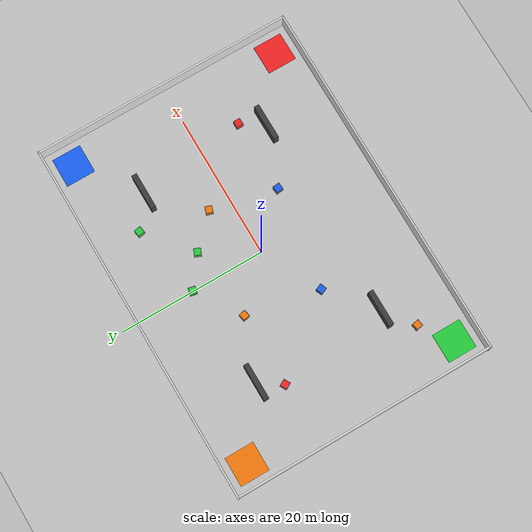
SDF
<?xml version="1.0" ?>
<sdf version="1.6">
  <!-- Large warehouse + colored pick boxes + corner drop pads. -->
  <world name="storage_warehouse">

    <include>
      <uri>model://ground_plane</uri>
    </include>
    <include>
      <uri>model://sun</uri>
    </include>

    <gravity>0 0 -9.8</gravity>
    <physics type="ode">
      <max_step_size>0.001</max_step_size>
      <real_time_factor>1</real_time_factor>
      <real_time_update_rate>1000</real_time_update_rate>
      <ode>
        <solver>
          <type>quick</type>
          <iters>50</iters>
          <sor>1.3</sor>
        </solver>
        <constraints>
          <cfm>0.0</cfm>
          <erp>0.2</erp>
          <contact_max_correcting_vel>1.0</contact_max_correcting_vel>
          <contact_surface_layer>0.001</contact_surface_layer>
        </constraints>
      </ode>
    </physics>

    <!-- Publishes /gazebo/model_states so detectors use real world poses (not odom drift) -->
    <plugin name="gazebo_ros_state" filename="libgazebo_ros_state.so">
      <ros>
        <namespace>/gazebo</namespace>
      </ros>
      <update_rate>20</update_rate>
    </plugin>

    <!-- Outer walls: 50 x 36 m — room for a ~3 m forklift to turn -->
    <model name="wall_n">
      <static>true</static>
      <pose>0 18 1.25 0 0 0</pose>
      <link name="link">
        <collision name="c"><geometry><box><size>50.4 0.25 2.5</size></box></geometry></collision>
        <visual name="v"><geometry><box><size>50.4 0.25 2.5</size></box></geometry>
          <material><ambient>0.5 0.5 0.5 1</ambient><diffuse>0.90 0.90 0.90 1</diffuse></material>
        </visual>
      </link>
    </model>
    <model name="wall_s">
      <static>true</static>
      <pose>0 -18 1.25 0 0 0</pose>
      <link name="link">
        <collision name="c"><geometry><box><size>50.4 0.25 2.5</size></box></geometry></collision>
        <visual name="v"><geometry><box><size>50.4 0.25 2.5</size></box></geometry>
          <material><ambient>0.5 0.5 0.5 1</ambient><diffuse>0.90 0.90 0.90 1</diffuse></material>
        </visual>
      </link>
    </model>
    <model name="wall_e">
      <static>true</static>
      <pose>25 0 1.25 0 0 0</pose>
      <link name="link">
        <collision name="c"><geometry><box><size>0.25 36 2.5</size></box></geometry></collision>
        <visual name="v"><geometry><box><size>0.25 36 2.5</size></box></geometry>
          <material><ambient>0.5 0.5 0.5 1</ambient><diffuse>0.90 0.90 0.90 1</diffuse></material>
        </visual>
      </link>
    </model>
    <model name="wall_w">
      <static>true</static>
      <pose>-25 0 1.25 0 0 0</pose>
      <link name="link">
        <collision name="c"><geometry><box><size>0.25 36 2.5</size></box></geometry></collision>
        <visual name="v"><geometry><box><size>0.25 36 2.5</size></box></geometry>
          <material><ambient>0.5 0.5 0.5 1</ambient><diffuse>0.90 0.90 0.90 1</diffuse></material>
        </visual>
      </link>
    </model>

    <!-- Shorter racks, wide aisles (~10 m clear) so the car can turn -->
    <model name="rack_1">
      <static>true</static>
      <pose>-14 -9 1 0 0 0</pose>
      <link name="link">
        <collision name="c"><geometry><box><size>5 0.7 2</size></box></geometry></collision>
        <visual name="v"><geometry><box><size>5 0.7 2</size></box></geometry>
          <material><ambient>0.2 0.2 0.2 1</ambient><diffuse>0.25 0.25 0.25 1</diffuse></material>
        </visual>
      </link>
    </model>
    <model name="rack_2">
      <static>true</static>
      <pose>14 -9 1 0 0 0</pose>
      <link name="link">
        <collision name="c"><geometry><box><size>5 0.7 2</size></box></geometry></collision>
        <visual name="v"><geometry><box><size>5 0.7 2</size></box></geometry>
          <material><ambient>0.2 0.2 0.2 1</ambient><diffuse>0.25 0.25 0.25 1</diffuse></material>
        </visual>
      </link>
    </model>
    <model name="rack_3">
      <static>true</static>
      <pose>-14 9 1 0 0 0</pose>
      <link name="link">
        <collision name="c"><geometry><box><size>5 0.7 2</size></box></geometry></collision>
        <visual name="v"><geometry><box><size>5 0.7 2</size></box></geometry>
          <material><ambient>0.2 0.2 0.2 1</ambient><diffuse>0.25 0.25 0.25 1</diffuse></material>
        </visual>
      </link>
    </model>
    <model name="rack_4">
      <static>true</static>
      <pose>14 9 1 0 0 0</pose>
      <link name="link">
        <collision name="c"><geometry><box><size>5 0.7 2</size></box></geometry></collision>
        <visual name="v"><geometry><box><size>5 0.7 2</size></box></geometry>
          <material><ambient>0.2 0.2 0.2 1</ambient><diffuse>0.25 0.25 0.25 1</diffuse></material>
        </visual>
      </link>
    </model>

    <!-- Colored boxes (~0.90 m). Clear of spawn (origin). -->
    <model name="box_orange_1">
      <pose>-6 6 0.45 0 0 0.2</pose>
      <link name="link">
        <collision name="c">
          <geometry><box><size>0.90 0.90 0.90</size></box></geometry>
          <surface>
            <friction>
              <ode><mu>2.0</mu><mu2>2.0</mu2></ode>
            </friction>
            <contact>
              <ode><kp>5000</kp><kd>20</kd><max_vel>0.1</max_vel></ode>
            </contact>
          </surface>
        </collision>
        <!-- Full color face + black EDGE frame only -->
        <visual name="v"><geometry><box><size>0.90 0.90 0.90</size></box></geometry>
          <material><ambient>0.95 0.45 0.05 1</ambient><diffuse>1.0 0.5 0.05 1</diffuse></material>
        </visual>
        <visual name="edge_1"><pose>0 -0.46 -0.46 0 0 0</pose><geometry><box><size>0.9 0.05 0.05</size></box></geometry><material><ambient>0.02 0.02 0.02 1</ambient><diffuse>0.05 0.05 0.05 1</diffuse></material></visual>
        <visual name="edge_2"><pose>0 -0.46 0.46 0 0 0</pose><geometry><box><size>0.9 0.05 0.05</size></box></geometry><material><ambient>0.02 0.02 0.02 1</ambient><diffuse>0.05 0.05 0.05 1</diffuse></material></visual>
        <visual name="edge_3"><pose>0 0.46 -0.46 0 0 0</pose><geometry><box><size>0.9 0.05 0.05</size></box></geometry><material><ambient>0.02 0.02 0.02 1</ambient><diffuse>0.05 0.05 0.05 1</diffuse></material></visual>
        <visual name="edge_4"><pose>0 0.46 0.46 0 0 0</pose><geometry><box><size>0.9 0.05 0.05</size></box></geometry><material><ambient>0.02 0.02 0.02 1</ambient><diffuse>0.05 0.05 0.05 1</diffuse></material></visual>
        <visual name="edge_5"><pose>-0.46 0 -0.46 0 0 0</pose><geometry><box><size>0.05 0.9 0.05</size></box></geometry><material><ambient>0.02 0.02 0.02 1</ambient><diffuse>0.05 0.05 0.05 1</diffuse></material></visual>
        <visual name="edge_6"><pose>-0.46 0 0.46 0 0 0</pose><geometry><box><size>0.05 0.9 0.05</size></box></geometry><material><ambient>0.02 0.02 0.02 1</ambient><diffuse>0.05 0.05 0.05 1</diffuse></material></visual>
        <visual name="edge_7"><pose>0.46 0 -0.46 0 0 0</pose><geometry><box><size>0.05 0.9 0.05</size></box></geometry><material><ambient>0.02 0.02 0.02 1</ambient><diffuse>0.05 0.05 0.05 1</diffuse></material></visual>
        <visual name="edge_8"><pose>0.46 0 0.46 0 0 0</pose><geometry><box><size>0.05 0.9 0.05</size></box></geometry><material><ambient>0.02 0.02 0.02 1</ambient><diffuse>0.05 0.05 0.05 1</diffuse></material></visual>
        <visual name="edge_9"><pose>-0.46 -0.46 0 0 0 0</pose><geometry><box><size>0.05 0.05 0.9</size></box></geometry><material><ambient>0.02 0.02 0.02 1</ambient><diffuse>0.05 0.05 0.05 1</diffuse></material></visual>
        <visual name="edge_10"><pose>-0.46 0.46 0 0 0 0</pose><geometry><box><size>0.05 0.05 0.9</size></box></geometry><material><ambient>0.02 0.02 0.02 1</ambient><diffuse>0.05 0.05 0.05 1</diffuse></material></visual>
        <visual name="edge_11"><pose>0.46 -0.46 0 0 0 0</pose><geometry><box><size>0.05 0.05 0.9</size></box></geometry><material><ambient>0.02 0.02 0.02 1</ambient><diffuse>0.05 0.05 0.05 1</diffuse></material></visual>
        <visual name="edge_12"><pose>0.46 0.46 0 0 0 0</pose><geometry><box><size>0.05 0.05 0.9</size></box></geometry><material><ambient>0.02 0.02 0.02 1</ambient><diffuse>0.05 0.05 0.05 1</diffuse></material></visual>
        <inertial>
          <mass>0.8</mass>
          <inertia><ixx>0.05</ixx><iyy>0.05</iyy><izz>0.05</izz><ixy>0</ixy><ixz>0</ixz><iyz>0</iyz></inertia>
        </inertial>
      </link>
    </model>
    <model name="box_orange_2">
      <pose>8 3 0.45 0 0 -0.3</pose>
      <link name="link">
        <collision name="c">
          <geometry><box><size>0.90 0.90 0.90</size></box></geometry>
          <surface>
            <friction>
              <ode><mu>2.0</mu><mu2>2.0</mu2></ode>
            </friction>
            <contact>
              <ode><kp>5000</kp><kd>20</kd><max_vel>0.1</max_vel></ode>
            </contact>
          </surface>
        </collision>
        <!-- Full color face + black EDGE frame only -->
        <visual name="v"><geometry><box><size>0.90 0.90 0.90</size></box></geometry>
          <material><ambient>0.95 0.45 0.05 1</ambient><diffuse>1.0 0.5 0.05 1</diffuse></material>
        </visual>
        <visual name="edge_1"><pose>0 -0.46 -0.46 0 0 0</pose><geometry><box><size>0.9 0.05 0.05</size></box></geometry><material><ambient>0.02 0.02 0.02 1</ambient><diffuse>0.05 0.05 0.05 1</diffuse></material></visual>
        <visual name="edge_2"><pose>0 -0.46 0.46 0 0 0</pose><geometry><box><size>0.9 0.05 0.05</size></box></geometry><material><ambient>0.02 0.02 0.02 1</ambient><diffuse>0.05 0.05 0.05 1</diffuse></material></visual>
        <visual name="edge_3"><pose>0 0.46 -0.46 0 0 0</pose><geometry><box><size>0.9 0.05 0.05</size></box></geometry><material><ambient>0.02 0.02 0.02 1</ambient><diffuse>0.05 0.05 0.05 1</diffuse></material></visual>
        <visual name="edge_4"><pose>0 0.46 0.46 0 0 0</pose><geometry><box><size>0.9 0.05 0.05</size></box></geometry><material><ambient>0.02 0.02 0.02 1</ambient><diffuse>0.05 0.05 0.05 1</diffuse></material></visual>
        <visual name="edge_5"><pose>-0.46 0 -0.46 0 0 0</pose><geometry><box><size>0.05 0.9 0.05</size></box></geometry><material><ambient>0.02 0.02 0.02 1</ambient><diffuse>0.05 0.05 0.05 1</diffuse></material></visual>
        <visual name="edge_6"><pose>-0.46 0 0.46 0 0 0</pose><geometry><box><size>0.05 0.9 0.05</size></box></geometry><material><ambient>0.02 0.02 0.02 1</ambient><diffuse>0.05 0.05 0.05 1</diffuse></material></visual>
        <visual name="edge_7"><pose>0.46 0 -0.46 0 0 0</pose><geometry><box><size>0.05 0.9 0.05</size></box></geometry><material><ambient>0.02 0.02 0.02 1</ambient><diffuse>0.05 0.05 0.05 1</diffuse></material></visual>
        <visual name="edge_8"><pose>0.46 0 0.46 0 0 0</pose><geometry><box><size>0.05 0.9 0.05</size></box></geometry><material><ambient>0.02 0.02 0.02 1</ambient><diffuse>0.05 0.05 0.05 1</diffuse></material></visual>
        <visual name="edge_9"><pose>-0.46 -0.46 0 0 0 0</pose><geometry><box><size>0.05 0.05 0.9</size></box></geometry><material><ambient>0.02 0.02 0.02 1</ambient><diffuse>0.05 0.05 0.05 1</diffuse></material></visual>
        <visual name="edge_10"><pose>-0.46 0.46 0 0 0 0</pose><geometry><box><size>0.05 0.05 0.9</size></box></geometry><material><ambient>0.02 0.02 0.02 1</ambient><diffuse>0.05 0.05 0.05 1</diffuse></material></visual>
        <visual name="edge_11"><pose>0.46 -0.46 0 0 0 0</pose><geometry><box><size>0.05 0.05 0.9</size></box></geometry><material><ambient>0.02 0.02 0.02 1</ambient><diffuse>0.05 0.05 0.05 1</diffuse></material></visual>
        <visual name="edge_12"><pose>0.46 0.46 0 0 0 0</pose><geometry><box><size>0.05 0.05 0.9</size></box></geometry><material><ambient>0.02 0.02 0.02 1</ambient><diffuse>0.05 0.05 0.05 1</diffuse></material></visual>
        <inertial>
          <mass>0.8</mass>
          <inertia><ixx>0.05</ixx><iyy>0.05</iyy><izz>0.05</izz><ixy>0</ixy><ixz>0</ixz><iyz>0</iyz></inertia>
        </inertial>
      </link>
    </model>

    <model name="box_blue_1">
      <pose>6 -6 0.45 0 0 0.1</pose>
      <link name="link">
        <collision name="c">
          <geometry><box><size>0.90 0.90 0.90</size></box></geometry>
          <surface>
            <friction>
              <ode><mu>2.0</mu><mu2>2.0</mu2></ode>
            </friction>
            <contact>
              <ode><kp>5000</kp><kd>20</kd><max_vel>0.1</max_vel></ode>
            </contact>
          </surface>
        </collision>
        <!-- Full color face + black EDGE frame only -->
        <visual name="v"><geometry><box><size>0.90 0.90 0.90</size></box></geometry>
          <material><ambient>0.05 0.35 0.95 1</ambient><diffuse>0.1 0.4 1.0 1</diffuse></material>
        </visual>
        <visual name="edge_1"><pose>0 -0.46 -0.46 0 0 0</pose><geometry><box><size>0.9 0.05 0.05</size></box></geometry><material><ambient>0.02 0.02 0.02 1</ambient><diffuse>0.05 0.05 0.05 1</diffuse></material></visual>
        <visual name="edge_2"><pose>0 -0.46 0.46 0 0 0</pose><geometry><box><size>0.9 0.05 0.05</size></box></geometry><material><ambient>0.02 0.02 0.02 1</ambient><diffuse>0.05 0.05 0.05 1</diffuse></material></visual>
        <visual name="edge_3"><pose>0 0.46 -0.46 0 0 0</pose><geometry><box><size>0.9 0.05 0.05</size></box></geometry><material><ambient>0.02 0.02 0.02 1</ambient><diffuse>0.05 0.05 0.05 1</diffuse></material></visual>
        <visual name="edge_4"><pose>0 0.46 0.46 0 0 0</pose><geometry><box><size>0.9 0.05 0.05</size></box></geometry><material><ambient>0.02 0.02 0.02 1</ambient><diffuse>0.05 0.05 0.05 1</diffuse></material></visual>
        <visual name="edge_5"><pose>-0.46 0 -0.46 0 0 0</pose><geometry><box><size>0.05 0.9 0.05</size></box></geometry><material><ambient>0.02 0.02 0.02 1</ambient><diffuse>0.05 0.05 0.05 1</diffuse></material></visual>
        <visual name="edge_6"><pose>-0.46 0 0.46 0 0 0</pose><geometry><box><size>0.05 0.9 0.05</size></box></geometry><material><ambient>0.02 0.02 0.02 1</ambient><diffuse>0.05 0.05 0.05 1</diffuse></material></visual>
        <visual name="edge_7"><pose>0.46 0 -0.46 0 0 0</pose><geometry><box><size>0.05 0.9 0.05</size></box></geometry><material><ambient>0.02 0.02 0.02 1</ambient><diffuse>0.05 0.05 0.05 1</diffuse></material></visual>
        <visual name="edge_8"><pose>0.46 0 0.46 0 0 0</pose><geometry><box><size>0.05 0.9 0.05</size></box></geometry><material><ambient>0.02 0.02 0.02 1</ambient><diffuse>0.05 0.05 0.05 1</diffuse></material></visual>
        <visual name="edge_9"><pose>-0.46 -0.46 0 0 0 0</pose><geometry><box><size>0.05 0.05 0.9</size></box></geometry><material><ambient>0.02 0.02 0.02 1</ambient><diffuse>0.05 0.05 0.05 1</diffuse></material></visual>
        <visual name="edge_10"><pose>-0.46 0.46 0 0 0 0</pose><geometry><box><size>0.05 0.05 0.9</size></box></geometry><material><ambient>0.02 0.02 0.02 1</ambient><diffuse>0.05 0.05 0.05 1</diffuse></material></visual>
        <visual name="edge_11"><pose>0.46 -0.46 0 0 0 0</pose><geometry><box><size>0.05 0.05 0.9</size></box></geometry><material><ambient>0.02 0.02 0.02 1</ambient><diffuse>0.05 0.05 0.05 1</diffuse></material></visual>
        <visual name="edge_12"><pose>0.46 0.46 0 0 0 0</pose><geometry><box><size>0.05 0.05 0.9</size></box></geometry><material><ambient>0.02 0.02 0.02 1</ambient><diffuse>0.05 0.05 0.05 1</diffuse></material></visual>
        <inertial>
          <mass>0.8</mass>
          <inertia><ixx>0.05</ixx><iyy>0.05</iyy><izz>0.05</izz><ixy>0</ixy><ixz>0</ixz><iyz>0</iyz></inertia>
        </inertial>
      </link>
    </model>
    <model name="box_blue_2">
      <pose>-8 -4 0.45 0 0 0.4</pose>
      <link name="link">
        <collision name="c">
          <geometry><box><size>0.90 0.90 0.90</size></box></geometry>
          <surface>
            <friction>
              <ode><mu>2.0</mu><mu2>2.0</mu2></ode>
            </friction>
            <contact>
              <ode><kp>5000</kp><kd>20</kd><max_vel>0.1</max_vel></ode>
            </contact>
          </surface>
        </collision>
        <!-- Full color face + black EDGE frame only -->
        <visual name="v"><geometry><box><size>0.90 0.90 0.90</size></box></geometry>
          <material><ambient>0.05 0.35 0.95 1</ambient><diffuse>0.1 0.4 1.0 1</diffuse></material>
        </visual>
        <visual name="edge_1"><pose>0 -0.46 -0.46 0 0 0</pose><geometry><box><size>0.9 0.05 0.05</size></box></geometry><material><ambient>0.02 0.02 0.02 1</ambient><diffuse>0.05 0.05 0.05 1</diffuse></material></visual>
        <visual name="edge_2"><pose>0 -0.46 0.46 0 0 0</pose><geometry><box><size>0.9 0.05 0.05</size></box></geometry><material><ambient>0.02 0.02 0.02 1</ambient><diffuse>0.05 0.05 0.05 1</diffuse></material></visual>
        <visual name="edge_3"><pose>0 0.46 -0.46 0 0 0</pose><geometry><box><size>0.9 0.05 0.05</size></box></geometry><material><ambient>0.02 0.02 0.02 1</ambient><diffuse>0.05 0.05 0.05 1</diffuse></material></visual>
        <visual name="edge_4"><pose>0 0.46 0.46 0 0 0</pose><geometry><box><size>0.9 0.05 0.05</size></box></geometry><material><ambient>0.02 0.02 0.02 1</ambient><diffuse>0.05 0.05 0.05 1</diffuse></material></visual>
        <visual name="edge_5"><pose>-0.46 0 -0.46 0 0 0</pose><geometry><box><size>0.05 0.9 0.05</size></box></geometry><material><ambient>0.02 0.02 0.02 1</ambient><diffuse>0.05 0.05 0.05 1</diffuse></material></visual>
        <visual name="edge_6"><pose>-0.46 0 0.46 0 0 0</pose><geometry><box><size>0.05 0.9 0.05</size></box></geometry><material><ambient>0.02 0.02 0.02 1</ambient><diffuse>0.05 0.05 0.05 1</diffuse></material></visual>
        <visual name="edge_7"><pose>0.46 0 -0.46 0 0 0</pose><geometry><box><size>0.05 0.9 0.05</size></box></geometry><material><ambient>0.02 0.02 0.02 1</ambient><diffuse>0.05 0.05 0.05 1</diffuse></material></visual>
        <visual name="edge_8"><pose>0.46 0 0.46 0 0 0</pose><geometry><box><size>0.05 0.9 0.05</size></box></geometry><material><ambient>0.02 0.02 0.02 1</ambient><diffuse>0.05 0.05 0.05 1</diffuse></material></visual>
        <visual name="edge_9"><pose>-0.46 -0.46 0 0 0 0</pose><geometry><box><size>0.05 0.05 0.9</size></box></geometry><material><ambient>0.02 0.02 0.02 1</ambient><diffuse>0.05 0.05 0.05 1</diffuse></material></visual>
        <visual name="edge_10"><pose>-0.46 0.46 0 0 0 0</pose><geometry><box><size>0.05 0.05 0.9</size></box></geometry><material><ambient>0.02 0.02 0.02 1</ambient><diffuse>0.05 0.05 0.05 1</diffuse></material></visual>
        <visual name="edge_11"><pose>0.46 -0.46 0 0 0 0</pose><geometry><box><size>0.05 0.05 0.9</size></box></geometry><material><ambient>0.02 0.02 0.02 1</ambient><diffuse>0.05 0.05 0.05 1</diffuse></material></visual>
        <visual name="edge_12"><pose>0.46 0.46 0 0 0 0</pose><geometry><box><size>0.05 0.05 0.9</size></box></geometry><material><ambient>0.02 0.02 0.02 1</ambient><diffuse>0.05 0.05 0.05 1</diffuse></material></visual>
        <inertial>
          <mass>0.8</mass>
          <inertia><ixx>0.05</ixx><iyy>0.05</iyy><izz>0.05</izz><ixy>0</ixy><ixz>0</ixz><iyz>0</iyz></inertia>
        </inertial>
      </link>
    </model>

    <model name="box_green_1">
      <pose>0 10 0.45 0 0 -0.2</pose>
      <link name="link">
        <collision name="c">
          <geometry><box><size>0.90 0.90 0.90</size></box></geometry>
          <surface>
            <friction>
              <ode><mu>2.0</mu><mu2>2.0</mu2></ode>
            </friction>
            <contact>
              <ode><kp>5000</kp><kd>20</kd><max_vel>0.1</max_vel></ode>
            </contact>
          </surface>
        </collision>
        <!-- Full color face + black EDGE frame only -->
        <visual name="v"><geometry><box><size>0.90 0.90 0.90</size></box></geometry>
          <material><ambient>0.1 0.75 0.2 1</ambient><diffuse>0.15 0.85 0.25 1</diffuse></material>
        </visual>
        <visual name="edge_1"><pose>0 -0.46 -0.46 0 0 0</pose><geometry><box><size>0.9 0.05 0.05</size></box></geometry><material><ambient>0.02 0.02 0.02 1</ambient><diffuse>0.05 0.05 0.05 1</diffuse></material></visual>
        <visual name="edge_2"><pose>0 -0.46 0.46 0 0 0</pose><geometry><box><size>0.9 0.05 0.05</size></box></geometry><material><ambient>0.02 0.02 0.02 1</ambient><diffuse>0.05 0.05 0.05 1</diffuse></material></visual>
        <visual name="edge_3"><pose>0 0.46 -0.46 0 0 0</pose><geometry><box><size>0.9 0.05 0.05</size></box></geometry><material><ambient>0.02 0.02 0.02 1</ambient><diffuse>0.05 0.05 0.05 1</diffuse></material></visual>
        <visual name="edge_4"><pose>0 0.46 0.46 0 0 0</pose><geometry><box><size>0.9 0.05 0.05</size></box></geometry><material><ambient>0.02 0.02 0.02 1</ambient><diffuse>0.05 0.05 0.05 1</diffuse></material></visual>
        <visual name="edge_5"><pose>-0.46 0 -0.46 0 0 0</pose><geometry><box><size>0.05 0.9 0.05</size></box></geometry><material><ambient>0.02 0.02 0.02 1</ambient><diffuse>0.05 0.05 0.05 1</diffuse></material></visual>
        <visual name="edge_6"><pose>-0.46 0 0.46 0 0 0</pose><geometry><box><size>0.05 0.9 0.05</size></box></geometry><material><ambient>0.02 0.02 0.02 1</ambient><diffuse>0.05 0.05 0.05 1</diffuse></material></visual>
        <visual name="edge_7"><pose>0.46 0 -0.46 0 0 0</pose><geometry><box><size>0.05 0.9 0.05</size></box></geometry><material><ambient>0.02 0.02 0.02 1</ambient><diffuse>0.05 0.05 0.05 1</diffuse></material></visual>
        <visual name="edge_8"><pose>0.46 0 0.46 0 0 0</pose><geometry><box><size>0.05 0.9 0.05</size></box></geometry><material><ambient>0.02 0.02 0.02 1</ambient><diffuse>0.05 0.05 0.05 1</diffuse></material></visual>
        <visual name="edge_9"><pose>-0.46 -0.46 0 0 0 0</pose><geometry><box><size>0.05 0.05 0.9</size></box></geometry><material><ambient>0.02 0.02 0.02 1</ambient><diffuse>0.05 0.05 0.05 1</diffuse></material></visual>
        <visual name="edge_10"><pose>-0.46 0.46 0 0 0 0</pose><geometry><box><size>0.05 0.05 0.9</size></box></geometry><material><ambient>0.02 0.02 0.02 1</ambient><diffuse>0.05 0.05 0.05 1</diffuse></material></visual>
        <visual name="edge_11"><pose>0.46 -0.46 0 0 0 0</pose><geometry><box><size>0.05 0.05 0.9</size></box></geometry><material><ambient>0.02 0.02 0.02 1</ambient><diffuse>0.05 0.05 0.05 1</diffuse></material></visual>
        <visual name="edge_12"><pose>0.46 0.46 0 0 0 0</pose><geometry><box><size>0.05 0.05 0.9</size></box></geometry><material><ambient>0.02 0.02 0.02 1</ambient><diffuse>0.05 0.05 0.05 1</diffuse></material></visual>
        <inertial>
          <mass>0.8</mass>
          <inertia><ixx>0.05</ixx><iyy>0.05</iyy><izz>0.05</izz><ixy>0</ixy><ixz>0</ixz><iyz>0</iyz></inertia>
        </inertial>
      </link>
    </model>
    <model name="box_green_2">
      <pose>10 12 0.45 0 0 0.15</pose>
      <link name="link">
        <collision name="c">
          <geometry><box><size>0.90 0.90 0.90</size></box></geometry>
          <surface>
            <friction>
              <ode><mu>2.0</mu><mu2>2.0</mu2></ode>
            </friction>
            <contact>
              <ode><kp>5000</kp><kd>20</kd><max_vel>0.1</max_vel></ode>
            </contact>
          </surface>
        </collision>
        <!-- Full color face + black EDGE frame only -->
        <visual name="v"><geometry><box><size>0.90 0.90 0.90</size></box></geometry>
          <material><ambient>0.1 0.75 0.2 1</ambient><diffuse>0.15 0.85 0.25 1</diffuse></material>
        </visual>
        <visual name="edge_1"><pose>0 -0.46 -0.46 0 0 0</pose><geometry><box><size>0.9 0.05 0.05</size></box></geometry><material><ambient>0.02 0.02 0.02 1</ambient><diffuse>0.05 0.05 0.05 1</diffuse></material></visual>
        <visual name="edge_2"><pose>0 -0.46 0.46 0 0 0</pose><geometry><box><size>0.9 0.05 0.05</size></box></geometry><material><ambient>0.02 0.02 0.02 1</ambient><diffuse>0.05 0.05 0.05 1</diffuse></material></visual>
        <visual name="edge_3"><pose>0 0.46 -0.46 0 0 0</pose><geometry><box><size>0.9 0.05 0.05</size></box></geometry><material><ambient>0.02 0.02 0.02 1</ambient><diffuse>0.05 0.05 0.05 1</diffuse></material></visual>
        <visual name="edge_4"><pose>0 0.46 0.46 0 0 0</pose><geometry><box><size>0.9 0.05 0.05</size></box></geometry><material><ambient>0.02 0.02 0.02 1</ambient><diffuse>0.05 0.05 0.05 1</diffuse></material></visual>
        <visual name="edge_5"><pose>-0.46 0 -0.46 0 0 0</pose><geometry><box><size>0.05 0.9 0.05</size></box></geometry><material><ambient>0.02 0.02 0.02 1</ambient><diffuse>0.05 0.05 0.05 1</diffuse></material></visual>
        <visual name="edge_6"><pose>-0.46 0 0.46 0 0 0</pose><geometry><box><size>0.05 0.9 0.05</size></box></geometry><material><ambient>0.02 0.02 0.02 1</ambient><diffuse>0.05 0.05 0.05 1</diffuse></material></visual>
        <visual name="edge_7"><pose>0.46 0 -0.46 0 0 0</pose><geometry><box><size>0.05 0.9 0.05</size></box></geometry><material><ambient>0.02 0.02 0.02 1</ambient><diffuse>0.05 0.05 0.05 1</diffuse></material></visual>
        <visual name="edge_8"><pose>0.46 0 0.46 0 0 0</pose><geometry><box><size>0.05 0.9 0.05</size></box></geometry><material><ambient>0.02 0.02 0.02 1</ambient><diffuse>0.05 0.05 0.05 1</diffuse></material></visual>
        <visual name="edge_9"><pose>-0.46 -0.46 0 0 0 0</pose><geometry><box><size>0.05 0.05 0.9</size></box></geometry><material><ambient>0.02 0.02 0.02 1</ambient><diffuse>0.05 0.05 0.05 1</diffuse></material></visual>
        <visual name="edge_10"><pose>-0.46 0.46 0 0 0 0</pose><geometry><box><size>0.05 0.05 0.9</size></box></geometry><material><ambient>0.02 0.02 0.02 1</ambient><diffuse>0.05 0.05 0.05 1</diffuse></material></visual>
        <visual name="edge_11"><pose>0.46 -0.46 0 0 0 0</pose><geometry><box><size>0.05 0.05 0.9</size></box></geometry><material><ambient>0.02 0.02 0.02 1</ambient><diffuse>0.05 0.05 0.05 1</diffuse></material></visual>
        <visual name="edge_12"><pose>0.46 0.46 0 0 0 0</pose><geometry><box><size>0.05 0.05 0.9</size></box></geometry><material><ambient>0.02 0.02 0.02 1</ambient><diffuse>0.05 0.05 0.05 1</diffuse></material></visual>
        <inertial>
          <mass>0.8</mass>
          <inertia><ixx>0.05</ixx><iyy>0.05</iyy><izz>0.05</izz><ixy>0</ixy><ixz>0</ixz><iyz>0</iyz></inertia>
        </inertial>
      </link>
    </model>

    <model name="box_red_1">
      <pose>16 -6 0.45 0 0 0</pose>
      <link name="link">
        <collision name="c">
          <geometry><box><size>0.90 0.90 0.90</size></box></geometry>
          <surface>
            <friction>
              <ode><mu>2.0</mu><mu2>2.0</mu2></ode>
            </friction>
            <contact>
              <ode><kp>5000</kp><kd>20</kd><max_vel>0.1</max_vel></ode>
            </contact>
          </surface>
        </collision>
        <!-- Full color face + black EDGE frame only -->
        <visual name="v"><geometry><box><size>0.90 0.90 0.90</size></box></geometry>
          <material><ambient>0.9 0.1 0.1 1</ambient><diffuse>1.0 0.15 0.15 1</diffuse></material>
        </visual>
        <visual name="edge_1"><pose>0 -0.46 -0.46 0 0 0</pose><geometry><box><size>0.9 0.05 0.05</size></box></geometry><material><ambient>0.02 0.02 0.02 1</ambient><diffuse>0.05 0.05 0.05 1</diffuse></material></visual>
        <visual name="edge_2"><pose>0 -0.46 0.46 0 0 0</pose><geometry><box><size>0.9 0.05 0.05</size></box></geometry><material><ambient>0.02 0.02 0.02 1</ambient><diffuse>0.05 0.05 0.05 1</diffuse></material></visual>
        <visual name="edge_3"><pose>0 0.46 -0.46 0 0 0</pose><geometry><box><size>0.9 0.05 0.05</size></box></geometry><material><ambient>0.02 0.02 0.02 1</ambient><diffuse>0.05 0.05 0.05 1</diffuse></material></visual>
        <visual name="edge_4"><pose>0 0.46 0.46 0 0 0</pose><geometry><box><size>0.9 0.05 0.05</size></box></geometry><material><ambient>0.02 0.02 0.02 1</ambient><diffuse>0.05 0.05 0.05 1</diffuse></material></visual>
        <visual name="edge_5"><pose>-0.46 0 -0.46 0 0 0</pose><geometry><box><size>0.05 0.9 0.05</size></box></geometry><material><ambient>0.02 0.02 0.02 1</ambient><diffuse>0.05 0.05 0.05 1</diffuse></material></visual>
        <visual name="edge_6"><pose>-0.46 0 0.46 0 0 0</pose><geometry><box><size>0.05 0.9 0.05</size></box></geometry><material><ambient>0.02 0.02 0.02 1</ambient><diffuse>0.05 0.05 0.05 1</diffuse></material></visual>
        <visual name="edge_7"><pose>0.46 0 -0.46 0 0 0</pose><geometry><box><size>0.05 0.9 0.05</size></box></geometry><material><ambient>0.02 0.02 0.02 1</ambient><diffuse>0.05 0.05 0.05 1</diffuse></material></visual>
        <visual name="edge_8"><pose>0.46 0 0.46 0 0 0</pose><geometry><box><size>0.05 0.9 0.05</size></box></geometry><material><ambient>0.02 0.02 0.02 1</ambient><diffuse>0.05 0.05 0.05 1</diffuse></material></visual>
        <visual name="edge_9"><pose>-0.46 -0.46 0 0 0 0</pose><geometry><box><size>0.05 0.05 0.9</size></box></geometry><material><ambient>0.02 0.02 0.02 1</ambient><diffuse>0.05 0.05 0.05 1</diffuse></material></visual>
        <visual name="edge_10"><pose>-0.46 0.46 0 0 0 0</pose><geometry><box><size>0.05 0.05 0.9</size></box></geometry><material><ambient>0.02 0.02 0.02 1</ambient><diffuse>0.05 0.05 0.05 1</diffuse></material></visual>
        <visual name="edge_11"><pose>0.46 -0.46 0 0 0 0</pose><geometry><box><size>0.05 0.05 0.9</size></box></geometry><material><ambient>0.02 0.02 0.02 1</ambient><diffuse>0.05 0.05 0.05 1</diffuse></material></visual>
        <visual name="edge_12"><pose>0.46 0.46 0 0 0 0</pose><geometry><box><size>0.05 0.05 0.9</size></box></geometry><material><ambient>0.02 0.02 0.02 1</ambient><diffuse>0.05 0.05 0.05 1</diffuse></material></visual>
        <inertial>
          <mass>0.8</mass>
          <inertia><ixx>0.05</ixx><iyy>0.05</iyy><izz>0.05</izz><ixy>0</ixy><ixz>0</ixz><iyz>0</iyz></inertia>
        </inertial>
      </link>
    </model>
    <model name="box_red_2">
      <pose>-16 6 0.45 0 0 0.5</pose>
      <link name="link">
        <collision name="c">
          <geometry><box><size>0.90 0.90 0.90</size></box></geometry>
          <surface>
            <friction>
              <ode><mu>2.0</mu><mu2>2.0</mu2></ode>
            </friction>
            <contact>
              <ode><kp>5000</kp><kd>20</kd><max_vel>0.1</max_vel></ode>
            </contact>
          </surface>
        </collision>
        <!-- Full color face + black EDGE frame only -->
        <visual name="v"><geometry><box><size>0.90 0.90 0.90</size></box></geometry>
          <material><ambient>0.9 0.1 0.1 1</ambient><diffuse>1.0 0.15 0.15 1</diffuse></material>
        </visual>
        <visual name="edge_1"><pose>0 -0.46 -0.46 0 0 0</pose><geometry><box><size>0.9 0.05 0.05</size></box></geometry><material><ambient>0.02 0.02 0.02 1</ambient><diffuse>0.05 0.05 0.05 1</diffuse></material></visual>
        <visual name="edge_2"><pose>0 -0.46 0.46 0 0 0</pose><geometry><box><size>0.9 0.05 0.05</size></box></geometry><material><ambient>0.02 0.02 0.02 1</ambient><diffuse>0.05 0.05 0.05 1</diffuse></material></visual>
        <visual name="edge_3"><pose>0 0.46 -0.46 0 0 0</pose><geometry><box><size>0.9 0.05 0.05</size></box></geometry><material><ambient>0.02 0.02 0.02 1</ambient><diffuse>0.05 0.05 0.05 1</diffuse></material></visual>
        <visual name="edge_4"><pose>0 0.46 0.46 0 0 0</pose><geometry><box><size>0.9 0.05 0.05</size></box></geometry><material><ambient>0.02 0.02 0.02 1</ambient><diffuse>0.05 0.05 0.05 1</diffuse></material></visual>
        <visual name="edge_5"><pose>-0.46 0 -0.46 0 0 0</pose><geometry><box><size>0.05 0.9 0.05</size></box></geometry><material><ambient>0.02 0.02 0.02 1</ambient><diffuse>0.05 0.05 0.05 1</diffuse></material></visual>
        <visual name="edge_6"><pose>-0.46 0 0.46 0 0 0</pose><geometry><box><size>0.05 0.9 0.05</size></box></geometry><material><ambient>0.02 0.02 0.02 1</ambient><diffuse>0.05 0.05 0.05 1</diffuse></material></visual>
        <visual name="edge_7"><pose>0.46 0 -0.46 0 0 0</pose><geometry><box><size>0.05 0.9 0.05</size></box></geometry><material><ambient>0.02 0.02 0.02 1</ambient><diffuse>0.05 0.05 0.05 1</diffuse></material></visual>
        <visual name="edge_8"><pose>0.46 0 0.46 0 0 0</pose><geometry><box><size>0.05 0.9 0.05</size></box></geometry><material><ambient>0.02 0.02 0.02 1</ambient><diffuse>0.05 0.05 0.05 1</diffuse></material></visual>
        <visual name="edge_9"><pose>-0.46 -0.46 0 0 0 0</pose><geometry><box><size>0.05 0.05 0.9</size></box></geometry><material><ambient>0.02 0.02 0.02 1</ambient><diffuse>0.05 0.05 0.05 1</diffuse></material></visual>
        <visual name="edge_10"><pose>-0.46 0.46 0 0 0 0</pose><geometry><box><size>0.05 0.05 0.9</size></box></geometry><material><ambient>0.02 0.02 0.02 1</ambient><diffuse>0.05 0.05 0.05 1</diffuse></material></visual>
        <visual name="edge_11"><pose>0.46 -0.46 0 0 0 0</pose><geometry><box><size>0.05 0.05 0.9</size></box></geometry><material><ambient>0.02 0.02 0.02 1</ambient><diffuse>0.05 0.05 0.05 1</diffuse></material></visual>
        <visual name="edge_12"><pose>0.46 0.46 0 0 0 0</pose><geometry><box><size>0.05 0.05 0.9</size></box></geometry><material><ambient>0.02 0.02 0.02 1</ambient><diffuse>0.05 0.05 0.05 1</diffuse></material></visual>
        <inertial>
          <mass>0.8</mass>
          <inertia><ixx>0.05</ixx><iyy>0.05</iyy><izz>0.05</izz><ixy>0</ixy><ixz>0</ixz><iyz>0</iyz></inertia>
        </inertial>
      </link>
    </model>

    <!-- Extra orange/blue (same 4 marker colors only) -->
    <model name="box_orange_3">
      <pose>-18 -12 0.45 0 0 0.2</pose>
      <link name="link">
        <collision name="c">
          <geometry><box><size>0.90 0.90 0.90</size></box></geometry>
          <surface>
            <friction>
              <ode><mu>2.0</mu><mu2>2.0</mu2></ode>
            </friction>
            <contact>
              <ode><kp>5000</kp><kd>20</kd><max_vel>0.1</max_vel></ode>
            </contact>
          </surface>
        </collision>
        <!-- Full color face + black EDGE frame only -->
        <visual name="v"><geometry><box><size>0.90 0.90 0.90</size></box></geometry>
          <material><ambient>0.95 0.45 0.05 1</ambient><diffuse>1.0 0.5 0.05 1</diffuse></material>
        </visual>
        <visual name="edge_1"><pose>0 -0.46 -0.46 0 0 0</pose><geometry><box><size>0.9 0.05 0.05</size></box></geometry><material><ambient>0.02 0.02 0.02 1</ambient><diffuse>0.05 0.05 0.05 1</diffuse></material></visual>
        <visual name="edge_2"><pose>0 -0.46 0.46 0 0 0</pose><geometry><box><size>0.9 0.05 0.05</size></box></geometry><material><ambient>0.02 0.02 0.02 1</ambient><diffuse>0.05 0.05 0.05 1</diffuse></material></visual>
        <visual name="edge_3"><pose>0 0.46 -0.46 0 0 0</pose><geometry><box><size>0.9 0.05 0.05</size></box></geometry><material><ambient>0.02 0.02 0.02 1</ambient><diffuse>0.05 0.05 0.05 1</diffuse></material></visual>
        <visual name="edge_4"><pose>0 0.46 0.46 0 0 0</pose><geometry><box><size>0.9 0.05 0.05</size></box></geometry><material><ambient>0.02 0.02 0.02 1</ambient><diffuse>0.05 0.05 0.05 1</diffuse></material></visual>
        <visual name="edge_5"><pose>-0.46 0 -0.46 0 0 0</pose><geometry><box><size>0.05 0.9 0.05</size></box></geometry><material><ambient>0.02 0.02 0.02 1</ambient><diffuse>0.05 0.05 0.05 1</diffuse></material></visual>
        <visual name="edge_6"><pose>-0.46 0 0.46 0 0 0</pose><geometry><box><size>0.05 0.9 0.05</size></box></geometry><material><ambient>0.02 0.02 0.02 1</ambient><diffuse>0.05 0.05 0.05 1</diffuse></material></visual>
        <visual name="edge_7"><pose>0.46 0 -0.46 0 0 0</pose><geometry><box><size>0.05 0.9 0.05</size></box></geometry><material><ambient>0.02 0.02 0.02 1</ambient><diffuse>0.05 0.05 0.05 1</diffuse></material></visual>
        <visual name="edge_8"><pose>0.46 0 0.46 0 0 0</pose><geometry><box><size>0.05 0.9 0.05</size></box></geometry><material><ambient>0.02 0.02 0.02 1</ambient><diffuse>0.05 0.05 0.05 1</diffuse></material></visual>
        <visual name="edge_9"><pose>-0.46 -0.46 0 0 0 0</pose><geometry><box><size>0.05 0.05 0.9</size></box></geometry><material><ambient>0.02 0.02 0.02 1</ambient><diffuse>0.05 0.05 0.05 1</diffuse></material></visual>
        <visual name="edge_10"><pose>-0.46 0.46 0 0 0 0</pose><geometry><box><size>0.05 0.05 0.9</size></box></geometry><material><ambient>0.02 0.02 0.02 1</ambient><diffuse>0.05 0.05 0.05 1</diffuse></material></visual>
        <visual name="edge_11"><pose>0.46 -0.46 0 0 0 0</pose><geometry><box><size>0.05 0.05 0.9</size></box></geometry><material><ambient>0.02 0.02 0.02 1</ambient><diffuse>0.05 0.05 0.05 1</diffuse></material></visual>
        <visual name="edge_12"><pose>0.46 0.46 0 0 0 0</pose><geometry><box><size>0.05 0.05 0.9</size></box></geometry><material><ambient>0.02 0.02 0.02 1</ambient><diffuse>0.05 0.05 0.05 1</diffuse></material></visual>
        <inertial>
          <mass>0.8</mass>
          <inertia><ixx>0.05</ixx><iyy>0.05</iyy><izz>0.05</izz><ixy>0</ixy><ixz>0</ixz><iyz>0</iyz></inertia>
        </inertial>
      </link>
    </model>
    <model name="box_green_3">
      <pose>4 7 0.45 0 0 -0.4</pose>
      <link name="link">
        <collision name="c">
          <geometry><box><size>0.90 0.90 0.90</size></box></geometry>
          <surface>
            <friction>
              <ode><mu>2.0</mu><mu2>2.0</mu2></ode>
            </friction>
            <contact>
              <ode><kp>5000</kp><kd>20</kd><max_vel>0.1</max_vel></ode>
            </contact>
          </surface>
        </collision>
        <!-- Full color face + black EDGE frame only -->
        <visual name="v"><geometry><box><size>0.90 0.90 0.90</size></box></geometry>
          <material><ambient>0.1 0.75 0.2 1</ambient><diffuse>0.15 0.85 0.25 1</diffuse></material>
        </visual>
        <visual name="edge_1"><pose>0 -0.46 -0.46 0 0 0</pose><geometry><box><size>0.9 0.05 0.05</size></box></geometry><material><ambient>0.02 0.02 0.02 1</ambient><diffuse>0.05 0.05 0.05 1</diffuse></material></visual>
        <visual name="edge_2"><pose>0 -0.46 0.46 0 0 0</pose><geometry><box><size>0.9 0.05 0.05</size></box></geometry><material><ambient>0.02 0.02 0.02 1</ambient><diffuse>0.05 0.05 0.05 1</diffuse></material></visual>
        <visual name="edge_3"><pose>0 0.46 -0.46 0 0 0</pose><geometry><box><size>0.9 0.05 0.05</size></box></geometry><material><ambient>0.02 0.02 0.02 1</ambient><diffuse>0.05 0.05 0.05 1</diffuse></material></visual>
        <visual name="edge_4"><pose>0 0.46 0.46 0 0 0</pose><geometry><box><size>0.9 0.05 0.05</size></box></geometry><material><ambient>0.02 0.02 0.02 1</ambient><diffuse>0.05 0.05 0.05 1</diffuse></material></visual>
        <visual name="edge_5"><pose>-0.46 0 -0.46 0 0 0</pose><geometry><box><size>0.05 0.9 0.05</size></box></geometry><material><ambient>0.02 0.02 0.02 1</ambient><diffuse>0.05 0.05 0.05 1</diffuse></material></visual>
        <visual name="edge_6"><pose>-0.46 0 0.46 0 0 0</pose><geometry><box><size>0.05 0.9 0.05</size></box></geometry><material><ambient>0.02 0.02 0.02 1</ambient><diffuse>0.05 0.05 0.05 1</diffuse></material></visual>
        <visual name="edge_7"><pose>0.46 0 -0.46 0 0 0</pose><geometry><box><size>0.05 0.9 0.05</size></box></geometry><material><ambient>0.02 0.02 0.02 1</ambient><diffuse>0.05 0.05 0.05 1</diffuse></material></visual>
        <visual name="edge_8"><pose>0.46 0 0.46 0 0 0</pose><geometry><box><size>0.05 0.9 0.05</size></box></geometry><material><ambient>0.02 0.02 0.02 1</ambient><diffuse>0.05 0.05 0.05 1</diffuse></material></visual>
        <visual name="edge_9"><pose>-0.46 -0.46 0 0 0 0</pose><geometry><box><size>0.05 0.05 0.9</size></box></geometry><material><ambient>0.02 0.02 0.02 1</ambient><diffuse>0.05 0.05 0.05 1</diffuse></material></visual>
        <visual name="edge_10"><pose>-0.46 0.46 0 0 0 0</pose><geometry><box><size>0.05 0.05 0.9</size></box></geometry><material><ambient>0.02 0.02 0.02 1</ambient><diffuse>0.05 0.05 0.05 1</diffuse></material></visual>
        <visual name="edge_11"><pose>0.46 -0.46 0 0 0 0</pose><geometry><box><size>0.05 0.05 0.9</size></box></geometry><material><ambient>0.02 0.02 0.02 1</ambient><diffuse>0.05 0.05 0.05 1</diffuse></material></visual>
        <visual name="edge_12"><pose>0.46 0.46 0 0 0 0</pose><geometry><box><size>0.05 0.05 0.9</size></box></geometry><material><ambient>0.02 0.02 0.02 1</ambient><diffuse>0.05 0.05 0.05 1</diffuse></material></visual>
        <inertial>
          <mass>0.8</mass>
          <inertia><ixx>0.05</ixx><iyy>0.05</iyy><izz>0.05</izz><ixy>0</ixy><ixz>0</ixz><iyz>0</iyz></inertia>
        </inertial>
      </link>
    </model>

    <!-- Corner drop pads (~4 m, sized for 0.90 m boxes; visual only) -->
    <model name="drop_orange">
      <static>true</static>
      <pose>-22 15 0.03 0 0 0</pose>
      <link name="link">
        <visual name="v"><geometry><box><size>4.0 4.0 0.08</size></box></geometry>
          <material><ambient>0.95 0.45 0.05 1</ambient><diffuse>1.0 0.5 0.05 1</diffuse></material>
        </visual>
      </link>
    </model>
    <model name="drop_blue">
      <static>true</static>
      <pose>22 15 0.03 0 0 0</pose>
      <link name="link">
        <visual name="v"><geometry><box><size>4.0 4.0 0.08</size></box></geometry>
          <material><ambient>0.05 0.35 0.95 1</ambient><diffuse>0.1 0.4 1.0 1</diffuse></material>
        </visual>
      </link>
    </model>
    <model name="drop_green">
      <static>true</static>
      <pose>-22 -15 0.03 0 0 0</pose>
      <link name="link">
        <visual name="v"><geometry><box><size>4.0 4.0 0.08</size></box></geometry>
          <material><ambient>0.1 0.75 0.2 1</ambient><diffuse>0.15 0.85 0.25 1</diffuse></material>
        </visual>
      </link>
    </model>
    <model name="drop_red">
      <static>true</static>
      <pose>22 -15 0.03 0 0 0</pose>
      <link name="link">
        <visual name="v"><geometry><box><size>4.0 4.0 0.08</size></box></geometry>
          <material><ambient>0.9 0.1 0.1 1</ambient><diffuse>1.0 0.15 0.15 1</diffuse></material>
        </visual>
      </link>
    </model>

  </world>
</sdf>
